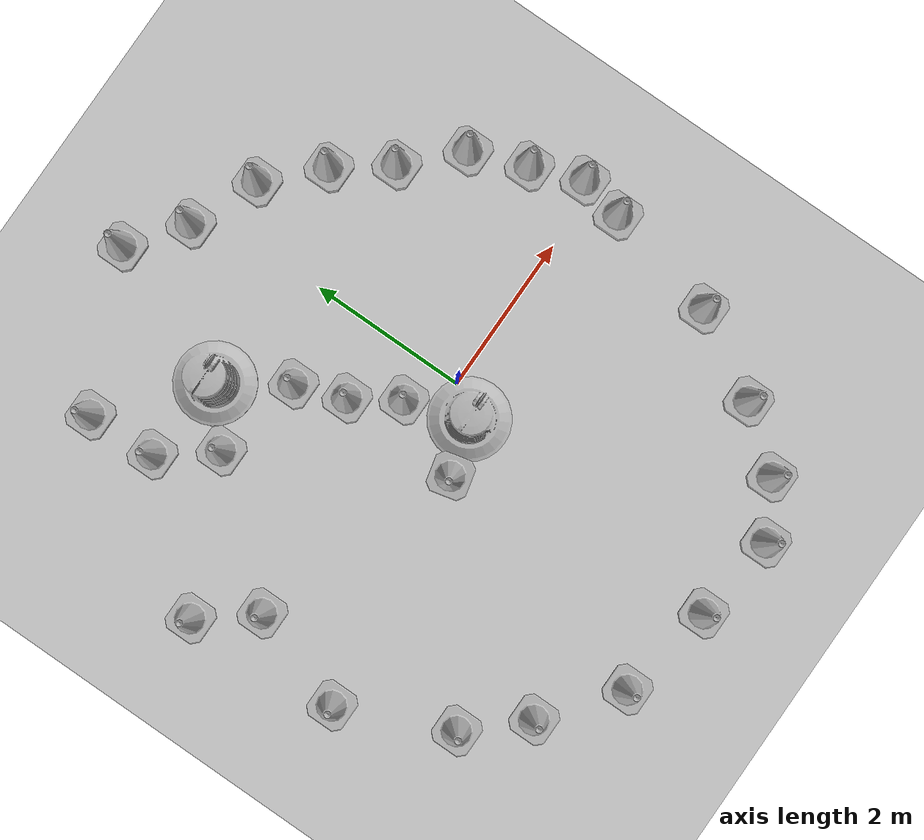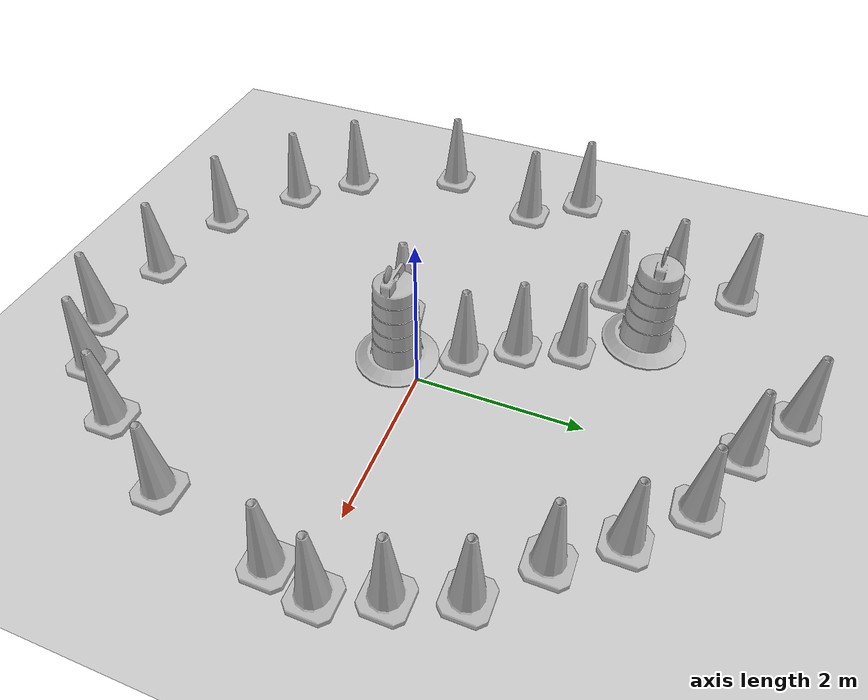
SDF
<sdf version="1.7">
 <world name="default">
  <light name="sun" type="directional">
   <pose>0 0 10 0 -0 0</pose>
   <diffuse>0.8 0.8 0.8 1</diffuse>
   <specular>0.2 0.2 0.2 1</specular>
   <attenuation>
    <range>1000</range>
    <constant>0.9</constant>
    <linear>0.01</linear>
    <quadratic>0.001</quadratic>
   </attenuation>
   <direction>-0.5 0.1 -0.9</direction>
   <spot><inner_angle>0</inner_angle><outer_angle>0</outer_angle><falloff>0</falloff></spot>
  </light>
  <model name="ground_plane">
   <static>1</static>
   <link name="link">
    <collision name="collision">
     <geometry><plane><normal>0 0 1</normal><size>100 100</size></plane></geometry>
     <surface>
      <contact><collide_bitmask>65535</collide_bitmask></contact>
      <friction><ode><mu>100</mu><mu2>50</mu2></ode></friction>
     </surface>
    </collision>
    <visual name="visual">
     <cast_shadows>0</cast_shadows>
     <geometry><plane><normal>0 0 1</normal><size>100 100</size></plane></geometry>
     <material>
      <script><uri>file://media/materials/scripts/gazebo.material</uri><name>Gazebo/Grey</name></script>
     </material>
    </visual>
   </link>
  </model>
  <gravity>0 0 -9.8</gravity>
  <magnetic_field>6e-06 2.3e-05 -4.2e-05</magnetic_field>
  <atmosphere type="adiabatic"/>
  <physics type="ode">
   <max_step_size>0.001</max_step_size>
   <real_time_factor>1</real_time_factor>
   <real_time_update_rate>1000</real_time_update_rate>
  </physics>
  <scene><ambient>0.4 0.4 0.4 1</ambient><background>0.7 0.7 0.7 1</background><shadows>1</shadows></scene>
  <audio><device>default</device></audio>
  <spherical_coordinates>
   <surface_model>EARTH_WGS84</surface_model>
   <latitude_deg>0</latitude_deg>
   <longitude_deg>0</longitude_deg>
   <elevation>0</elevation>
   <heading_deg>0</heading_deg>
  </spherical_coordinates>
  <model name="Construction Barrel">
   <link name="link">
    <inertial>
     <pose>0 0 0.4 0 -0 0</pose>
     <mass>500</mass>
     <inertia><ixx>51.2096</ixx><iyy>51.2096</iyy><izz>25</izz><ixy>0</ixy><ixz>0</ixz><iyz>0</iyz></inertia>
    </inertial>
    <collision name="collision">
     <geometry><mesh><uri>model://construction_barrel/meshes/construction_barrel.dae</uri></mesh></geometry>
    </collision>
    <visual name="visual">
     <geometry><mesh><uri>model://construction_barrel/meshes/construction_barrel.dae</uri></mesh></geometry>
    </visual>
   </link>
   <pose>-0.26427 -0.362442 -7.9e-05 0 -1e-06 -0.005246</pose>
  </model>
  <model name="Construction Cone">
   <link name="link">
    <collision name="collision">
     <geometry>
      <mesh><scale>10 10 10</scale><uri>model://construction_cone/meshes/construction_cone.dae</uri></mesh>
     </geometry>
    </collision>
    <visual name="visual">
     <geometry>
      <mesh><scale>10 10 10</scale><uri>model://construction_cone/meshes/construction_cone.dae</uri></mesh>
     </geometry>
    </visual>
    <inertial>
     <inertia><ixx>1</ixx><ixy>0</ixy><ixz>0</ixz><iyy>1</iyy><iyz>0</iyz><izz>1</izz></inertia>
     <mass>1</mass>
    </inertial>
   </link>
   <pose>2.74312 -0.431785 -0 0 -1e-06 0</pose>
  </model>
  <model name="Construction Barrel_0">
   <link name="link">
    <inertial>
     <pose>0 0 0.4 0 -0 0</pose>
     <mass>500</mass>
     <inertia><ixx>51.2096</ixx><iyy>51.2096</iyy><izz>25</izz><ixy>0</ixy><ixz>0</ixz><iyz>0</iyz></inertia>
    </inertial>
    <collision name="collision">
     <geometry><mesh><uri>model://construction_barrel/meshes/construction_barrel.dae</uri></mesh></geometry>
    </collision>
    <visual name="visual">
     <geometry><mesh><uri>model://construction_barrel/meshes/construction_barrel.dae</uri></mesh></geometry>
    </visual>
   </link>
   <pose>-1.63713 2.36065 -1e-06 4e-06 -1e-06 -3.5e-05</pose>
  </model>
  <model name="Construction Cone_0">
   <link name="link">
    <collision name="collision">
     <geometry>
      <mesh><scale>10 10 10</scale><uri>model://construction_cone/meshes/construction_cone.dae</uri></mesh>
     </geometry>
    </collision>
    <visual name="visual">
     <geometry>
      <mesh><scale>10 10 10</scale><uri>model://construction_cone/meshes/construction_cone.dae</uri></mesh>
     </geometry>
    </visual>
    <inertial>
     <inertia><ixx>1</ixx><ixy>0</ixy><ixz>0</ixz><iyy>1</iyy><iyz>0</iyz><izz>1</izz></inertia>
     <mass>1</mass>
    </inertial>
   </link>
   <pose>1.24731 2.72352 -0 0 -1e-06 0</pose>
  </model>
  <model name="Construction Cone_1">
   <link name="link">
    <collision name="collision">
     <geometry>
      <mesh><scale>10 10 10</scale><uri>model://construction_cone/meshes/construction_cone.dae</uri></mesh>
     </geometry>
    </collision>
    <visual name="visual">
     <geometry>
      <mesh><scale>10 10 10</scale><uri>model://construction_cone/meshes/construction_cone.dae</uri></mesh>
     </geometry>
    </visual>
    <inertial>
     <inertia><ixx>1</ixx><ixy>0</ixy><ixz>0</ixz><iyy>1</iyy><iyz>0</iyz><izz>1</izz></inertia>
     <mass>1</mass>
    </inertial>
   </link>
   <pose>1.73434 2.07732 -0 0 -1e-06 0</pose>
  </model>
  <model name="Construction Cone_2">
   <link name="link">
    <collision name="collision">
     <geometry>
      <mesh><scale>10 10 10</scale><uri>model://construction_cone/meshes/construction_cone.dae</uri></mesh>
     </geometry>
    </collision>
    <visual name="visual">
     <geometry>
      <mesh><scale>10 10 10</scale><uri>model://construction_cone/meshes/construction_cone.dae</uri></mesh>
     </geometry>
    </visual>
    <inertial>
     <inertia><ixx>1</ixx><ixy>0</ixy><ixz>0</ixz><iyy>1</iyy><iyz>0</iyz><izz>1</izz></inertia>
     <mass>1</mass>
    </inertial>
   </link>
   <pose>2.35658 1.47422 -0 -0 -0 -0</pose>
  </model>
  <model name="Construction Cone_2_clone">
   <link name="link">
    <collision name="collision">
     <geometry>
      <mesh><scale>10 10 10</scale><uri>model://construction_cone/meshes/construction_cone.dae</uri></mesh>
     </geometry>
    </collision>
    <visual name="visual">
     <geometry>
      <mesh><scale>10 10 10</scale><uri>model://construction_cone/meshes/construction_cone.dae</uri></mesh>
     </geometry>
    </visual>
    <inertial>
     <inertia><ixx>1</ixx><ixy>0</ixy><ixz>0</ixz><iyy>1</iyy><iyz>0</iyz><izz>1</izz></inertia>
     <mass>1</mass>
    </inertial>
   </link>
   <pose>2.62482 0.769872 -0 0 -1e-06 0</pose>
  </model>
  <model name="Construction Cone_2_clone_0">
   <link name="link">
    <collision name="collision">
     <geometry>
      <mesh><scale>10 10 10</scale><uri>model://construction_cone/meshes/construction_cone.dae</uri></mesh>
     </geometry>
    </collision>
    <visual name="visual">
     <geometry>
      <mesh><scale>10 10 10</scale><uri>model://construction_cone/meshes/construction_cone.dae</uri></mesh>
     </geometry>
    </visual>
    <inertial>
     <inertia><ixx>1</ixx><ixy>0</ixy><ixz>0</ixz><iyy>1</iyy><iyz>0</iyz><izz>1</izz></inertia>
     <mass>1</mass>
    </inertial>
   </link>
   <pose>2.86292 0.129513 -0 0 -1e-06 0</pose>
  </model>
  <model name="Construction Cone_2_clone_1">
   <link name="link">
    <collision name="collision">
     <geometry>
      <mesh><scale>10 10 10</scale><uri>model://construction_cone/meshes/construction_cone.dae</uri></mesh>
     </geometry>
    </collision>
    <visual name="visual">
     <geometry>
      <mesh><scale>10 10 10</scale><uri>model://construction_cone/meshes/construction_cone.dae</uri></mesh>
     </geometry>
    </visual>
    <inertial>
     <inertia><ixx>1</ixx><ixy>0</ixy><ixz>0</ixz><iyy>1</iyy><iyz>0</iyz><izz>1</izz></inertia>
     <mass>1</mass>
    </inertial>
   </link>
   <pose>0.616885 3.32573 -1e-05 0 1e-06 0</pose>
  </model>
  <model name="Construction Cone_2_clone_2">
   <link name="link">
    <collision name="collision">
     <geometry>
      <mesh><scale>10 10 10</scale><uri>model://construction_cone/meshes/construction_cone.dae</uri></mesh>
     </geometry>
    </collision>
    <visual name="visual">
     <geometry>
      <mesh><scale>10 10 10</scale><uri>model://construction_cone/meshes/construction_cone.dae</uri></mesh>
     </geometry>
    </visual>
    <inertial>
     <inertia><ixx>1</ixx><ixy>0</ixy><ixz>0</ixz><iyy>1</iyy><iyz>0</iyz><izz>1</izz></inertia>
     <mass>1</mass>
    </inertial>
   </link>
   <pose>-0.24466 3.68709 -8e-06 -5e-06 -0 -0</pose>
  </model>
  <model name="Construction Cone_2_clone_3">
   <link name="link">
    <collision name="collision">
     <geometry>
      <mesh><scale>10 10 10</scale><uri>model://construction_cone/meshes/construction_cone.dae</uri></mesh>
     </geometry>
    </collision>
    <visual name="visual">
     <geometry>
      <mesh><scale>10 10 10</scale><uri>model://construction_cone/meshes/construction_cone.dae</uri></mesh>
     </geometry>
    </visual>
    <inertial>
     <inertia><ixx>1</ixx><ixy>0</ixy><ixz>0</ixz><iyy>1</iyy><iyz>0</iyz><izz>1</izz></inertia>
     <mass>1</mass>
    </inertial>
   </link>
   <pose>-0.932663 4.1988 -0 0 -1e-06 0</pose>
  </model>
  <model name="Construction Cone_2_clone_4">
   <link name="link">
    <collision name="collision">
     <geometry>
      <mesh><scale>10 10 10</scale><uri>model://construction_cone/meshes/construction_cone.dae</uri></mesh>
     </geometry>
    </collision>
    <visual name="visual">
     <geometry>
      <mesh><scale>10 10 10</scale><uri>model://construction_cone/meshes/construction_cone.dae</uri></mesh>
     </geometry>
    </visual>
    <inertial>
     <inertia><ixx>1</ixx><ixy>0</ixy><ixz>0</ixz><iyy>1</iyy><iyz>0</iyz><izz>1</izz></inertia>
     <mass>1</mass>
    </inertial>
   </link>
   <pose>-0.941724 -0.565448 0.021286 0.000138 -0.084692 0.233671</pose>
  </model>
  <model name="Construction Cone_2_clone_5">
   <link name="link">
    <collision name="collision">
     <geometry>
      <mesh><scale>10 10 10</scale><uri>model://construction_cone/meshes/construction_cone.dae</uri></mesh>
     </geometry>
    </collision>
    <visual name="visual">
     <geometry>
      <mesh><scale>10 10 10</scale><uri>model://construction_cone/meshes/construction_cone.dae</uri></mesh>
     </geometry>
    </visual>
    <inertial>
     <inertia><ixx>1</ixx><ixy>0</ixy><ixz>0</ixz><iyy>1</iyy><iyz>0</iyz><izz>1</izz></inertia>
     <mass>1</mass>
    </inertial>
   </link>
   <pose>-2.25218 1.83346 -0 -0 -1e-06 0.000289</pose>
  </model>
  <model name="Construction Cone_2_clone_7">
   <link name="link">
    <collision name="collision">
     <geometry>
      <mesh><scale>10 10 10</scale><uri>model://construction_cone/meshes/construction_cone.dae</uri></mesh>
     </geometry>
    </collision>
    <visual name="visual">
     <geometry>
      <mesh><scale>10 10 10</scale><uri>model://construction_cone/meshes/construction_cone.dae</uri></mesh>
     </geometry>
    </visual>
    <inertial>
     <inertia><ixx>1</ixx><ixy>0</ixy><ixz>0</ixz><iyy>1</iyy><iyz>0</iyz><izz>1</izz></inertia>
     <mass>1</mass>
    </inertial>
   </link>
   <pose>-3.54844 0.333659 -1e-05 -0 -0 -0</pose>
  </model>
  <model name="Construction Cone_2_clone_8">
   <link name="link">
    <collision name="collision">
     <geometry>
      <mesh><scale>10 10 10</scale><uri>model://construction_cone/meshes/construction_cone.dae</uri></mesh>
     </geometry>
    </collision>
    <visual name="visual">
     <geometry>
      <mesh><scale>10 10 10</scale><uri>model://construction_cone/meshes/construction_cone.dae</uri></mesh>
     </geometry>
    </visual>
    <inertial>
     <inertia><ixx>1</ixx><ixy>0</ixy><ixz>0</ixz><iyy>1</iyy><iyz>0</iyz><izz>1</izz></inertia>
     <mass>1</mass>
    </inertial>
   </link>
   <pose>-3.96538 -0.962504 -1e-05 -1e-06 0 0</pose>
  </model>
  <model name="Construction Cone_2_clone_9">
   <link name="link">
    <collision name="collision">
     <geometry>
      <mesh><scale>10 10 10</scale><uri>model://construction_cone/meshes/construction_cone.dae</uri></mesh>
     </geometry>
    </collision>
    <visual name="visual">
     <geometry>
      <mesh><scale>10 10 10</scale><uri>model://construction_cone/meshes/construction_cone.dae</uri></mesh>
     </geometry>
    </visual>
    <inertial>
     <inertia><ixx>1</ixx><ixy>0</ixy><ixz>0</ixz><iyy>1</iyy><iyz>0</iyz><izz>1</izz></inertia>
     <mass>1</mass>
    </inertial>
   </link>
   <pose>-3.37108 -2.33915 -0 0 -1e-06 0</pose>
  </model>
  <model name="Construction Cone_2_clone_10">
   <link name="link">
    <collision name="collision">
     <geometry>
      <mesh><scale>10 10 10</scale><uri>model://construction_cone/meshes/construction_cone.dae</uri></mesh>
     </geometry>
    </collision>
    <visual name="visual">
     <geometry>
      <mesh><scale>10 10 10</scale><uri>model://construction_cone/meshes/construction_cone.dae</uri></mesh>
     </geometry>
    </visual>
    <inertial>
     <inertia><ixx>1</ixx><ixy>0</ixy><ixz>0</ixz><iyy>1</iyy><iyz>0</iyz><izz>1</izz></inertia>
     <mass>1</mass>
    </inertial>
   </link>
   <pose>-2.74461 -3.01214 -0 0 -1e-06 0</pose>
  </model>
  <model name="Construction Cone_2_clone_11">
   <link name="link">
    <collision name="collision">
     <geometry>
      <mesh><scale>10 10 10</scale><uri>model://construction_cone/meshes/construction_cone.dae</uri></mesh>
     </geometry>
    </collision>
    <visual name="visual">
     <geometry>
      <mesh><scale>10 10 10</scale><uri>model://construction_cone/meshes/construction_cone.dae</uri></mesh>
     </geometry>
    </visual>
    <inertial>
     <inertia><ixx>1</ixx><ixy>0</ixy><ixz>0</ixz><iyy>1</iyy><iyz>0</iyz><izz>1</izz></inertia>
     <mass>1</mass>
    </inertial>
   </link>
   <pose>-1.82582 -3.71492 -0 0 -0 0</pose>
  </model>
  <model name="Construction Cone_2_clone_12">
   <link name="link">
    <collision name="collision">
     <geometry>
      <mesh><scale>10 10 10</scale><uri>model://construction_cone/meshes/construction_cone.dae</uri></mesh>
     </geometry>
    </collision>
    <visual name="visual">
     <geometry>
      <mesh><scale>10 10 10</scale><uri>model://construction_cone/meshes/construction_cone.dae</uri></mesh>
     </geometry>
    </visual>
    <inertial>
     <inertia><ixx>1</ixx><ixy>0</ixy><ixz>0</ixz><iyy>1</iyy><iyz>0</iyz><izz>1</izz></inertia>
     <mass>1</mass>
    </inertial>
   </link>
   <pose>-0.573936 -3.9446 -1e-05 -0 -0 -0</pose>
  </model>
  <model name="Construction Cone_2_clone_13">
   <link name="link">
    <collision name="collision">
     <geometry>
      <mesh><scale>10 10 10</scale><uri>model://construction_cone/meshes/construction_cone.dae</uri></mesh>
     </geometry>
    </collision>
    <visual name="visual">
     <geometry>
      <mesh><scale>10 10 10</scale><uri>model://construction_cone/meshes/construction_cone.dae</uri></mesh>
     </geometry>
    </visual>
    <inertial>
     <inertia><ixx>1</ixx><ixy>0</ixy><ixz>0</ixz><iyy>1</iyy><iyz>0</iyz><izz>1</izz></inertia>
     <mass>1</mass>
    </inertial>
   </link>
   <pose>0.534518 -4.07568 -0 0 -1e-06 0</pose>
  </model>
  <model name="Construction Cone_2_clone_6">
   <link name="link">
    <collision name="collision">
     <geometry>
      <mesh><scale>10 10 10</scale><uri>model://construction_cone/meshes/construction_cone.dae</uri></mesh>
     </geometry>
    </collision>
    <visual name="visual">
     <geometry>
      <mesh><scale>10 10 10</scale><uri>model://construction_cone/meshes/construction_cone.dae</uri></mesh>
     </geometry>
    </visual>
    <inertial>
     <inertia><ixx>1</ixx><ixy>0</ixy><ixz>0</ixz><iyy>1</iyy><iyz>0</iyz><izz>1</izz></inertia>
     <mass>1</mass>
    </inertial>
   </link>
   <pose>-0.889726 0.968935 -0 0 -0 0</pose>
  </model>
  <model name="Construction Cone_2_clone_14">
   <link name="link">
    <collision name="collision">
     <geometry>
      <mesh><scale>10 10 10</scale><uri>model://construction_cone/meshes/construction_cone.dae</uri></mesh>
     </geometry>
    </collision>
    <visual name="visual">
     <geometry>
      <mesh><scale>10 10 10</scale><uri>model://construction_cone/meshes/construction_cone.dae</uri></mesh>
     </geometry>
    </visual>
    <inertial>
     <inertia><ixx>1</ixx><ixy>0</ixy><ixz>0</ixz><iyy>1</iyy><iyz>0</iyz><izz>1</izz></inertia>
     <mass>1</mass>
    </inertial>
   </link>
   <pose>-2.75347 2.48038 -0 0 -1e-06 0</pose>
  </model>
  <model name="Construction Cone_2_clone_15">
   <link name="link">
    <collision name="collision">
     <geometry>
      <mesh><scale>10 10 10</scale><uri>model://construction_cone/meshes/construction_cone.dae</uri></mesh>
     </geometry>
    </collision>
    <visual name="visual">
     <geometry>
      <mesh><scale>10 10 10</scale><uri>model://construction_cone/meshes/construction_cone.dae</uri></mesh>
     </geometry>
    </visual>
    <inertial>
     <inertia><ixx>1</ixx><ixy>0</ixy><ixz>0</ixz><iyy>1</iyy><iyz>0</iyz><izz>1</izz></inertia>
     <mass>1</mass>
    </inertial>
   </link>
   <pose>-4.07867 0.994868 -0 0 -1e-06 0</pose>
  </model>
  <model name="Construction Cone_2_clone_16">
   <link name="link">
    <collision name="collision">
     <geometry>
      <mesh><scale>10 10 10</scale><uri>model://construction_cone/meshes/construction_cone.dae</uri></mesh>
     </geometry>
    </collision>
    <visual name="visual">
     <geometry>
      <mesh><scale>10 10 10</scale><uri>model://construction_cone/meshes/construction_cone.dae</uri></mesh>
     </geometry>
    </visual>
    <inertial>
     <inertia><ixx>1</ixx><ixy>0</ixy><ixz>0</ixz><iyy>1</iyy><iyz>0</iyz><izz>1</izz></inertia>
     <mass>1</mass>
    </inertial>
   </link>
   <pose>-2.78886 3.35225 -0 0 -1e-06 0</pose>
  </model>
  <model name="Construction Cone_2_clone_17">
   <link name="link">
    <collision name="collision">
     <geometry>
      <mesh><scale>10 10 10</scale><uri>model://construction_cone/meshes/construction_cone.dae</uri></mesh>
     </geometry>
    </collision>
    <visual name="visual">
     <geometry>
      <mesh><scale>10 10 10</scale><uri>model://construction_cone/meshes/construction_cone.dae</uri></mesh>
     </geometry>
    </visual>
    <inertial>
     <inertia><ixx>1</ixx><ixy>0</ixy><ixz>0</ixz><iyy>1</iyy><iyz>0</iyz><izz>1</izz></inertia>
     <mass>1</mass>
    </inertial>
   </link>
   <pose>-1.11378 1.58737 -0 0 -1e-06 0</pose>
  </model>
  <model name="Construction Cone_2_clone_18">
   <link name="link">
    <collision name="collision">
     <geometry>
      <mesh><scale>10 10 10</scale><uri>model://construction_cone/meshes/construction_cone.dae</uri></mesh>
     </geometry>
    </collision>
    <visual name="visual">
     <geometry>
      <mesh><scale>10 10 10</scale><uri>model://construction_cone/meshes/construction_cone.dae</uri></mesh>
     </geometry>
    </visual>
    <inertial>
     <inertia><ixx>1</ixx><ixy>0</ixy><ixz>0</ixz><iyy>1</iyy><iyz>0</iyz><izz>1</izz></inertia>
     <mass>1</mass>
    </inertial>
   </link>
   <pose>-0.521298 0.40242 -0 0 -1e-06 0</pose>
  </model>
  <model name="Construction Cone_2_clone_19">
   <link name="link">
    <collision name="collision">
     <geometry>
      <mesh><scale>10 10 10</scale><uri>model://construction_cone/meshes/construction_cone.dae</uri></mesh>
     </geometry>
    </collision>
    <visual name="visual">
     <geometry>
      <mesh><scale>10 10 10</scale><uri>model://construction_cone/meshes/construction_cone.dae</uri></mesh>
     </geometry>
    </visual>
    <inertial>
     <inertia><ixx>1</ixx><ixy>0</ixy><ixz>0</ixz><iyy>1</iyy><iyz>0</iyz><izz>1</izz></inertia>
     <mass>1</mass>
    </inertial>
   </link>
   <pose>2.40443 -1.90238 0 -0 -0 -0</pose>
  </model>
  <model name="Construction Cone_2_clone_20">
   <link name="link">
    <collision name="collision">
     <geometry>
      <mesh><scale>10 10 10</scale><uri>model://construction_cone/meshes/construction_cone.dae</uri></mesh>
     </geometry>
    </collision>
    <visual name="visual">
     <geometry>
      <mesh><scale>10 10 10</scale><uri>model://construction_cone/meshes/construction_cone.dae</uri></mesh>
     </geometry>
    </visual>
    <inertial>
     <inertia><ixx>1</ixx><ixy>0</ixy><ixz>0</ixz><iyy>1</iyy><iyz>0</iyz><izz>1</izz></inertia>
     <mass>1</mass>
    </inertial>
   </link>
   <pose>1.79746 -2.96281 -0 0 -1e-06 0</pose>
  </model>
  <model name="Construction Cone_2_clone_21">
   <link name="link">
    <collision name="collision">
     <geometry>
      <mesh><scale>10 10 10</scale><uri>model://construction_cone/meshes/construction_cone.dae</uri></mesh>
     </geometry>
    </collision>
    <visual name="visual">
     <geometry>
      <mesh><scale>10 10 10</scale><uri>model://construction_cone/meshes/construction_cone.dae</uri></mesh>
     </geometry>
    </visual>
    <inertial>
     <inertia><ixx>1</ixx><ixy>0</ixy><ixz>0</ixz><iyy>1</iyy><iyz>0</iyz><izz>1</izz></inertia>
     <mass>1</mass>
    </inertial>
   </link>
   <pose>1.21482 -3.69661 -0 0 -1e-06 0</pose>
  </model>
 </world>
</sdf>
